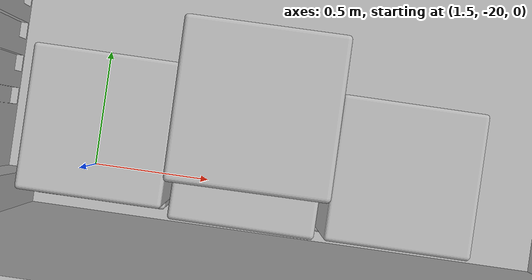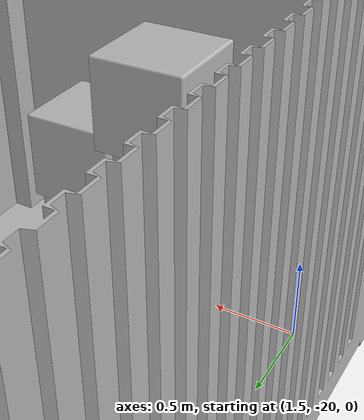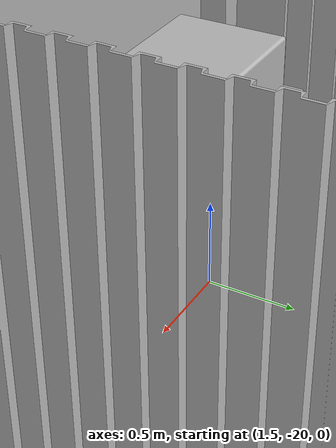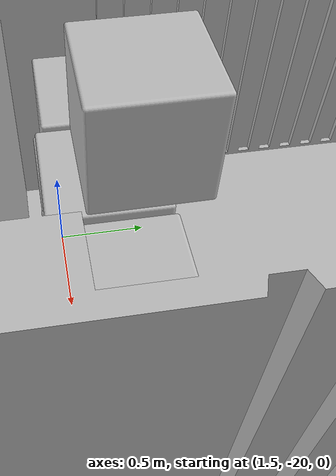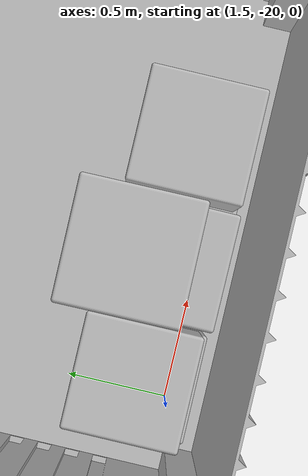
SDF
<sdf version="1.7">
 <world name="default">
  <light name="sun" type="directional">
   <pose>0 0 10 0 -0 0</pose>
   <diffuse>0.8 0.8 0.8 1</diffuse>
   <specular>0.2 0.2 0.2 1</specular>
   <attenuation>
    <range>1000</range>
    <constant>0.9</constant>
    <linear>0.01</linear>
    <quadratic>0.001</quadratic>
   </attenuation>
   <direction>-0.5 0.1 -0.9</direction>
   <spot><inner_angle>0</inner_angle><outer_angle>0</outer_angle><falloff>0</falloff></spot>
  </light>
  <gravity>0 0 -9.8</gravity>
  <magnetic_field>6e-06 2.3e-05 -4.2e-05</magnetic_field>
  <atmosphere type="adiabatic"/>
  <physics type="ode">
   <max_step_size>0.001</max_step_size>
   <real_time_factor>1</real_time_factor>
   <real_time_update_rate>1000</real_time_update_rate>
  </physics>
  <scene><ambient>0.4 0.4 0.4 1</ambient><background>0.7 0.7 0.7 1</background><shadows>1</shadows></scene>
  <spherical_coordinates>
   <surface_model>EARTH_WGS84</surface_model>
   <latitude_deg>0</latitude_deg>
   <longitude_deg>0</longitude_deg>
   <elevation>0</elevation>
   <heading_deg>0</heading_deg>
  </spherical_coordinates>
  <model name="Warehouse_with_open_top_container">
   <static>1</static>
   <link name="link">
    <collision name="collision">
     <geometry>
      <mesh><uri>model://warehouse_03/meshes/warehouse_v05_2 v1.stl</uri><scale>0.001 0.001 0.001</scale></mesh>
     </geometry>
    </collision>
    <visual name="visual">
     <geometry>
      <mesh><uri>model://warehouse_03/meshes/warehouse_v05_2 v1.stl</uri><scale>0.001 0.001 0.001</scale></mesh>
     </geometry>
    </visual>
   </link>
   <pose>2.32357 -14.1103 0 0 -0 0</pose>
  </model>
  <model name="500x500x500_box">
   <link name="link">
    <collision name="collision">
     <geometry>
      <mesh><scale>1 1 1</scale><uri>model://500x500x500_box/meshes/500x500x500_box_v2.dae</uri></mesh>
     </geometry>
    </collision>
    <visual name="visual">
     <geometry>
      <mesh><scale>1 1 1</scale><uri>model://500x500x500_box/meshes/500x500x500_box_v2.dae</uri></mesh>
     </geometry>
    </visual>
    <inertial>
     <inertia><ixx>1</ixx><ixy>0</ixy><ixz>0</ixz><iyy>1</iyy><iyz>0</iyz><izz>1</izz></inertia>
     <mass>1</mass>
    </inertial>
   </link>
   <pose>1.62453 -19.8519 0.472997 0 -0 0.000534</pose>
  </model>
  <model name="500x500x500_box_clone">
   <link name="link">
    <collision name="collision">
     <geometry>
      <mesh><scale>1 1 1</scale><uri>model://500x500x500_box/meshes/500x500x500_box_v2.dae</uri></mesh>
     </geometry>
    </collision>
    <visual name="visual">
     <geometry>
      <mesh><scale>1 1 1</scale><uri>model://500x500x500_box/meshes/500x500x500_box_v2.dae</uri></mesh>
     </geometry>
    </visual>
    <inertial>
     <inertia><ixx>1</ixx><ixy>0</ixy><ixz>0</ixz><iyy>1</iyy><iyz>0</iyz><izz>1</izz></inertia>
     <mass>1</mass>
    </inertial>
   </link>
   <pose>2.15284 -19.8531 0.472978 3e-06 -7e-06 0.003011</pose>
  </model>
  <model name="500x500x500_box_clone_clone">
   <link name="link">
    <collision name="collision">
     <geometry>
      <mesh><scale>1 1 1</scale><uri>model://500x500x500_box/meshes/500x500x500_box_v2.dae</uri></mesh>
     </geometry>
    </collision>
    <visual name="visual">
     <geometry>
      <mesh><scale>1 1 1</scale><uri>model://500x500x500_box/meshes/500x500x500_box_v2.dae</uri></mesh>
     </geometry>
    </visual>
    <inertial>
     <inertia><ixx>1</ixx><ixy>0</ixy><ixz>0</ixz><iyy>1</iyy><iyz>0</iyz><izz>1</izz></inertia>
     <mass>1</mass>
    </inertial>
   </link>
   <pose>2.16815 -19.8426 0.972969 1.6e-05 -6e-06 -0.006012</pose>
  </model>
  <model name="500x500x500_box_clone_0">
   <link name="link">
    <collision name="collision">
     <geometry>
      <mesh><scale>1 1 1</scale><uri>model://500x500x500_box/meshes/500x500x500_box_v2.dae</uri></mesh>
     </geometry>
    </collision>
    <visual name="visual">
     <geometry>
      <mesh><scale>1 1 1</scale><uri>model://500x500x500_box/meshes/500x500x500_box_v2.dae</uri></mesh>
     </geometry>
    </visual>
    <inertial>
     <inertia><ixx>1</ixx><ixy>0</ixy><ixz>0</ixz><iyy>1</iyy><iyz>0</iyz><izz>1</izz></inertia>
     <mass>1</mass>
    </inertial>
   </link>
   <pose>1.64164 -19.8125 0.972998 -3e-06 2e-06 -0.000659</pose>
  </model>
  <model name="500x500x500_box_clone_1">
   <link name="link">
    <collision name="collision">
     <geometry>
      <mesh><scale>1 1 1</scale><uri>model://500x500x500_box/meshes/500x500x500_box_v2.dae</uri></mesh>
     </geometry>
    </collision>
    <visual name="visual">
     <geometry>
      <mesh><scale>1 1 1</scale><uri>model://500x500x500_box/meshes/500x500x500_box_v2.dae</uri></mesh>
     </geometry>
    </visual>
    <inertial>
     <inertia><ixx>1</ixx><ixy>0</ixy><ixz>0</ixz><iyy>1</iyy><iyz>0</iyz><izz>1</izz></inertia>
     <mass>1</mass>
    </inertial>
   </link>
   <pose>2.69979 -19.8403 0.972988 -3e-06 1e-06 -0.001176</pose>
  </model>
  <model name="500x500x500_box_clone_2">
   <link name="link">
    <collision name="collision">
     <geometry>
      <mesh><scale>1 1 1</scale><uri>model://500x500x500_box/meshes/500x500x500_box_v2.dae</uri></mesh>
     </geometry>
    </collision>
    <visual name="visual">
     <geometry>
      <mesh><scale>1 1 1</scale><uri>model://500x500x500_box/meshes/500x500x500_box_v2.dae</uri></mesh>
     </geometry>
    </visual>
    <inertial>
     <inertia><ixx>1</ixx><ixy>0</ixy><ixz>0</ixz><iyy>1</iyy><iyz>0</iyz><izz>1</izz></inertia>
     <mass>1</mass>
    </inertial>
   </link>
   <pose>2.16669 -19.6895 1.473 -1.4e-05 0.000133 0.006134</pose>
  </model>
  <model name="500x500x500_box_clone_3">
   <link name="link">
    <collision name="collision">
     <geometry>
      <mesh><scale>1 1 1</scale><uri>model://500x500x500_box/meshes/500x500x500_box_v2.dae</uri></mesh>
     </geometry>
    </collision>
    <visual name="visual">
     <geometry>
      <mesh><scale>1 1 1</scale><uri>model://500x500x500_box/meshes/500x500x500_box_v2.dae</uri></mesh>
     </geometry>
    </visual>
    <inertial>
     <inertia><ixx>1</ixx><ixy>0</ixy><ixz>0</ixz><iyy>1</iyy><iyz>0</iyz><izz>1</izz></inertia>
     <mass>1</mass>
    </inertial>
   </link>
   <pose>2.65811 -19.8518 0.472988 -1e-06 1e-06 -4e-05</pose>
  </model>
  <light name="user_directional_light_0" type="directional">
   <pose>10.9384 -43.2131 1 0 -0 0</pose>
   <diffuse>0.5 0.5 0.5 1</diffuse>
   <specular>0.1 0.1 0.1 1</specular>
   <direction>0.1 0.1 -0.9</direction>
   <attenuation>
    <range>20</range>
    <constant>0.5</constant>
    <linear>0.01</linear>
    <quadratic>0.001</quadratic>
   </attenuation>
  </light>
  <light name="user_point_light_0" type="point">
   <pose>-31.9284 -19.9219 1 0 -0 0</pose>
   <diffuse>0.5 0.5 0.5 1</diffuse>
   <specular>0.1 0.1 0.1 1</specular>
   <attenuation>
    <range>20</range>
    <constant>0.5</constant>
    <linear>0.01</linear>
    <quadratic>0.001</quadratic>
   </attenuation>
   <cast_shadows>0</cast_shadows>
   <direction>0 0 -1</direction>
  </light>
 </world>
</sdf>
